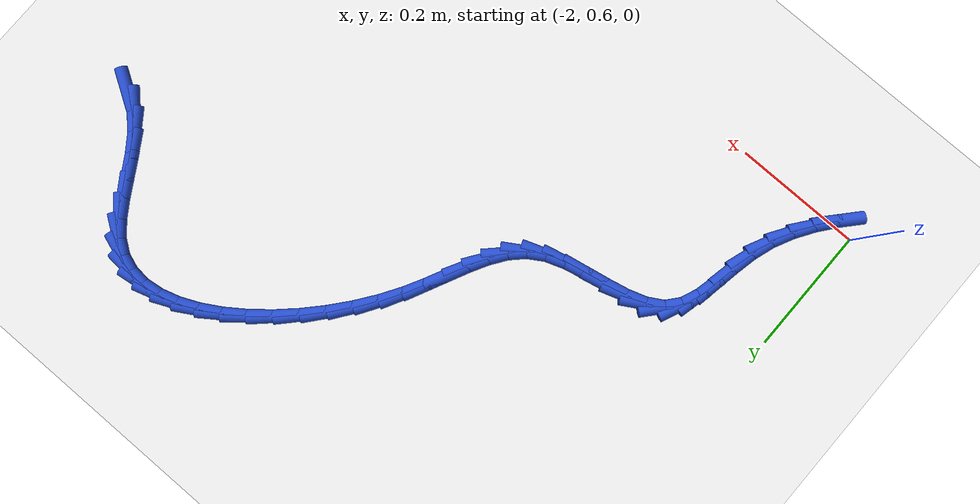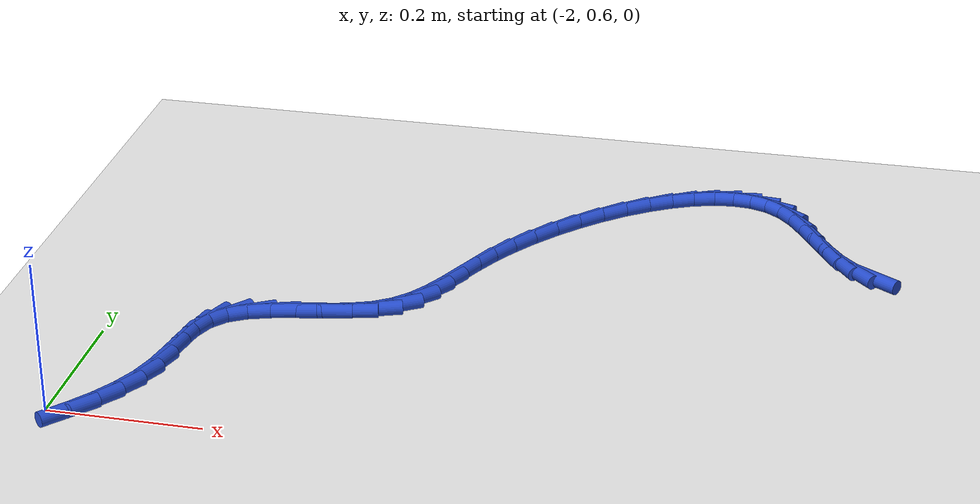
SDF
<sdf version="1.6">
 <world name="default">
  <model name="ground_plane">
   <static>1</static>
   <link name="link">
    <collision name="collision">
     <geometry><plane><normal>0 0 1</normal><size>100 100</size></plane></geometry>
     <surface><friction><ode><mu>100</mu><mu2>50</mu2></ode></friction></surface>
    </collision>
    <visual name="visual">
     <cast_shadows>0</cast_shadows>
     <geometry><plane><normal>0 0 1</normal><size>100 100</size></plane></geometry>
     <material>
      <script><uri>file://media/materials/scripts/gazebo.material</uri><name>Gazebo/WhiteGlow</name></script>
     </material>
    </visual>
   </link>
  </model>
  <model name="line">
   <link name="link_65">
    <pose>-1.0385259442946118 1.1344171002235808 0.01 0 1.57 -0.5570299091420484</pose>
    <collision name="collision">
     <geometry><cylinder><radius>0.01</radius><length>0.08</length></cylinder></geometry>
    </collision>
    <visual name="visual">
     <material>
      <script><name>Gazebo/Blue</name><uri>file://media/materials/scripts/gazebo.material</uri></script>
     </material>
     <geometry><cylinder><radius>0.01</radius><length>0.08</length></cylinder></geometry>
    </visual>
   </link>
   <link name="link_66">
    <pose>-1.0639125861375751 1.1502284004064944 0.01 0 1.57 -0.7981371832090325</pose>
    <collision name="collision">
     <geometry><cylinder><radius>0.01</radius><length>0.08</length></cylinder></geometry>
    </collision>
    <visual name="visual">
     <material>
      <script><name>Gazebo/Blue</name><uri>file://media/materials/scripts/gazebo.material</uri></script>
     </material>
     <geometry><cylinder><radius>0.01</radius><length>0.08</length></cylinder></geometry>
    </visual>
   </link>
   <link name="link_67">
    <pose>-1.085646373729949 1.1725230980873538 0.01 0 1.57 -0.947294685701872</pose>
    <collision name="collision">
     <geometry><cylinder><radius>0.01</radius><length>0.08</length></cylinder></geometry>
    </collision>
    <visual name="visual">
     <material>
      <script><name>Gazebo/Blue</name><uri>file://media/materials/scripts/gazebo.material</uri></script>
     </material>
     <geometry><cylinder><radius>0.01</radius><length>0.08</length></cylinder></geometry>
    </visual>
   </link>
   <link name="link_68">
    <pose>-1.1047691575569256 1.1991117459700105 0.01 0 1.57 -1.0217661538840968</pose>
    <collision name="collision">
     <geometry><cylinder><radius>0.01</radius><length>0.08</length></cylinder></geometry>
    </collision>
    <visual name="visual">
     <material>
      <script><name>Gazebo/Blue</name><uri>file://media/materials/scripts/gazebo.material</uri></script>
     </material>
     <geometry><cylinder><radius>0.01</radius><length>0.08</length></cylinder></geometry>
    </visual>
   </link>
   <link name="link_69">
    <pose>-1.1223228001824475 1.2278048758486622 0.01 0 1.57 -1.0339447680257958</pose>
    <collision name="collision">
     <geometry><cylinder><radius>0.01</radius><length>0.08</length></cylinder></geometry>
    </collision>
    <visual name="visual">
     <material>
      <script><name>Gazebo/Blue</name><uri>file://media/materials/scripts/gazebo.material</uri></script>
     </material>
     <geometry><cylinder><radius>0.01</radius><length>0.08</length></cylinder></geometry>
    </visual>
   </link>
   <link name="link_70">
    <pose>-1.139349164170456 1.256413019517506 0.01 0 1.57 -0.9831840949513274</pose>
    <collision name="collision">
     <geometry><cylinder><radius>0.01</radius><length>0.08</length></cylinder></geometry>
    </collision>
    <visual name="visual">
     <material>
      <script><name>Gazebo/Blue</name><uri>file://media/materials/scripts/gazebo.material</uri></script>
     </material>
     <geometry><cylinder><radius>0.01</radius><length>0.08</length></cylinder></geometry>
    </visual>
   </link>
   <link name="link_71">
    <pose>-1.1568901120848927 1.2827467087707387 0.01 0 1.57 -0.8529681778314206</pose>
    <collision name="collision">
     <geometry><cylinder><radius>0.01</radius><length>0.08</length></cylinder></geometry>
    </collision>
    <visual name="visual">
     <material>
      <script><name>Gazebo/Blue</name><uri>file://media/materials/scripts/gazebo.material</uri></script>
     </material>
     <geometry><cylinder><radius>0.01</radius><length>0.08</length></cylinder></geometry>
    </visual>
   </link>
   <link name="link_72">
    <pose>-1.1759875064897007 1.3046164754025587 0.01 0 1.57 -0.6192459355643442</pose>
    <collision name="collision">
     <geometry><cylinder><radius>0.01</radius><length>0.08</length></cylinder></geometry>
    </collision>
    <visual name="visual">
     <material>
      <script><name>Gazebo/Blue</name><uri>file://media/materials/scripts/gazebo.material</uri></script>
     </material>
     <geometry><cylinder><radius>0.01</radius><length>0.08</length></cylinder></geometry>
    </visual>
   </link>
   <link name="link_73">
    <pose>-1.1975858368351269 1.3200111439633708 0.01 0 1.57 -0.3404955863911096</pose>
    <collision name="collision">
     <geometry><cylinder><radius>0.01</radius><length>0.08</length></cylinder></geometry>
    </collision>
    <visual name="visual">
     <material>
      <script><name>Gazebo/Blue</name><uri>file://media/materials/scripts/gazebo.material</uri></script>
     </material>
     <geometry><cylinder><radius>0.01</radius><length>0.08</length></cylinder></geometry>
    </visual>
   </link>
   <link name="link_74">
    <pose>-1.221730652946045 1.3285655213224539 0.01 0 1.57 -0.08504919665741796</pose>
    <collision name="collision">
     <geometry><cylinder><radius>0.01</radius><length>0.08</length></cylinder></geometry>
    </collision>
    <visual name="visual">
     <material>
      <script><name>Gazebo/Blue</name><uri>file://media/materials/scripts/gazebo.material</uri></script>
     </material>
     <geometry><cylinder><radius>0.01</radius><length>0.08</length></cylinder></geometry>
    </visual>
   </link>
   <link name="link_75">
    <pose>-1.247981900912136 1.3308035676798982 0.01 0 1.57 0.12634848457698927</pose>
    <collision name="collision">
     <geometry><cylinder><radius>0.01</radius><length>0.08</length></cylinder></geometry>
    </collision>
    <visual name="visual">
     <material>
      <script><name>Gazebo/Blue</name><uri>file://media/materials/scripts/gazebo.material</uri></script>
     </material>
     <geometry><cylinder><radius>0.01</radius><length>0.08</length></cylinder></geometry>
    </visual>
   </link>
   <link name="link_76">
    <pose>-1.2758947827266114 1.3272579298023763 0.01 0 1.57 0.29327493461313775</pose>
    <collision name="collision">
     <geometry><cylinder><radius>0.01</radius><length>0.08</length></cylinder></geometry>
    </collision>
    <visual name="visual">
     <material>
      <script><name>Gazebo/Blue</name><uri>file://media/materials/scripts/gazebo.material</uri></script>
     </material>
     <geometry><cylinder><radius>0.01</radius><length>0.08</length></cylinder></geometry>
    </visual>
   </link>
   <link name="link_77">
    <pose>-1.305024500382684 1.3184612544565595 0.01 0 1.57 0.4245012357309593</pose>
    <collision name="collision">
     <geometry><cylinder><radius>0.01</radius><length>0.08</length></cylinder></geometry>
    </collision>
    <visual name="visual">
     <material>
      <script><name>Gazebo/Blue</name><uri>file://media/materials/scripts/gazebo.material</uri></script>
     </material>
     <geometry><cylinder><radius>0.01</radius><length>0.08</length></cylinder></geometry>
    </visual>
   </link>
   <link name="link_78">
    <pose>-1.3349262558735653 1.3049461884091194 0.01 0 1.57 0.5297322021029683</pose>
    <collision name="collision">
     <geometry><cylinder><radius>0.01</radius><length>0.08</length></cylinder></geometry>
    </collision>
    <visual name="visual">
     <material>
      <script><name>Gazebo/Blue</name><uri>file://media/materials/scripts/gazebo.material</uri></script>
     </material>
     <geometry><cylinder><radius>0.01</radius><length>0.08</length></cylinder></geometry>
    </visual>
   </link>
   <link name="link_79">
    <pose>-1.3651552511924674 1.2872453784267284 0.01 0 1.57 0.6168489731235464</pose>
    <collision name="collision">
     <geometry><cylinder><radius>0.01</radius><length>0.08</length></cylinder></geometry>
    </collision>
    <visual name="visual">
     <material>
      <script><name>Gazebo/Blue</name><uri>file://media/materials/scripts/gazebo.material</uri></script>
     </material>
     <geometry><cylinder><radius>0.01</radius><length>0.08</length></cylinder></geometry>
    </visual>
   </link>
   <link name="link_80">
    <pose>-1.395266688332602 1.2658914712760576 0.01 0 1.57 0.6917374154410754</pose>
    <collision name="collision">
     <geometry><cylinder><radius>0.01</radius><length>0.08</length></cylinder></geometry>
    </collision>
    <visual name="visual">
     <material>
      <script><name>Gazebo/Blue</name><uri>file://media/materials/scripts/gazebo.material</uri></script>
     </material>
     <geometry><cylinder><radius>0.01</radius><length>0.08</length></cylinder></geometry>
    </visual>
   </link>
   <link name="link_81">
    <pose>-1.4248157692871815 1.241417113723779 0.01 0 1.57 0.7587919112067915</pose>
    <collision name="collision">
     <geometry><cylinder><radius>0.01</radius><length>0.08</length></cylinder></geometry>
    </collision>
    <visual name="visual">
     <material>
      <script><name>Gazebo/Blue</name><uri>file://media/materials/scripts/gazebo.material</uri></script>
     </material>
     <geometry><cylinder><radius>0.01</radius><length>0.08</length></cylinder></geometry>
    </visual>
   </link>
   <link name="link_82">
    <pose>-1.4533576960494177 1.2143549525365644 0.01 0 1.57 0.8214515811731434</pose>
    <collision name="collision">
     <geometry><cylinder><radius>0.01</radius><length>0.08</length></cylinder></geometry>
    </collision>
    <visual name="visual">
     <material>
      <script><name>Gazebo/Blue</name><uri>file://media/materials/scripts/gazebo.material</uri></script>
     </material>
     <geometry><cylinder><radius>0.01</radius><length>0.08</length></cylinder></geometry>
    </visual>
   </link>
   <link name="link_83">
    <pose>-1.4804476706125231 1.1852376344810853 0.01 0 1.57 0.8826420778739458</pose>
    <collision name="collision">
     <geometry><cylinder><radius>0.01</radius><length>0.08</length></cylinder></geometry>
    </collision>
    <visual name="visual">
     <material>
      <script><name>Gazebo/Blue</name><uri>file://media/materials/scripts/gazebo.material</uri></script>
     </material>
     <geometry><cylinder><radius>0.01</radius><length>0.08</length></cylinder></geometry>
    </visual>
   </link>
   <link name="link_84">
    <pose>-1.505640894969709 1.1545978063240137 0.01 0 1.57 0.9451448736222566</pose>
    <collision name="collision">
     <geometry><cylinder><radius>0.01</radius><length>0.08</length></cylinder></geometry>
    </collision>
    <visual name="visual">
     <material>
      <script><name>Gazebo/Blue</name><uri>file://media/materials/scripts/gazebo.material</uri></script>
     </material>
     <geometry><cylinder><radius>0.01</radius><length>0.08</length></cylinder></geometry>
    </visual>
   </link>
   <link name="link_85">
    <pose>-1.5284925711141875 1.1229681148320214 0.01 0 1.57 1.0119502504168083</pose>
    <collision name="collision">
     <geometry><cylinder><radius>0.01</radius><length>0.08</length></cylinder></geometry>
    </collision>
    <visual name="visual">
     <material>
      <script><name>Gazebo/Blue</name><uri>file://media/materials/scripts/gazebo.material</uri></script>
     </material>
     <geometry><cylinder><radius>0.01</radius><length>0.08</length></cylinder></geometry>
    </visual>
   </link>
   <link name="link_86">
    <pose>-1.5485579010391712 1.0908812067717797 0.01 0 1.57 1.0805561548901128</pose>
    <collision name="collision">
     <geometry><cylinder><radius>0.01</radius><length>0.08</length></cylinder></geometry>
    </collision>
    <visual name="visual">
     <material>
      <script><name>Gazebo/Blue</name><uri>file://media/materials/scripts/gazebo.material</uri></script>
     </material>
     <geometry><cylinder><radius>0.01</radius><length>0.08</length></cylinder></geometry>
    </visual>
   </link>
   <link name="link_87">
    <pose>-1.5656249235765292 1.0589023263864956 0.01 0 1.57 1.1213152404434834</pose>
    <collision name="collision">
     <geometry><cylinder><radius>0.01</radius><length>0.08</length></cylinder></geometry>
    </collision>
    <visual name="visual">
     <material>
      <script><name>Gazebo/Blue</name><uri>file://media/materials/scripts/gazebo.material</uri></script>
     </material>
     <geometry><cylinder><radius>0.01</radius><length>0.08</length></cylinder></geometry>
    </visual>
   </link>
   <link name="link_88">
    <pose>-1.5806484250973594 1.0277600641739928 0.01 0 1.57 1.119786827306552</pose>
    <collision name="collision">
     <geometry><cylinder><radius>0.01</radius><length>0.08</length></cylinder></geometry>
    </collision>
    <visual name="visual">
     <material>
      <script><name>Gazebo/Blue</name><uri>file://media/materials/scripts/gazebo.material</uri></script>
     </material>
     <geometry><cylinder><radius>0.01</radius><length>0.08</length></cylinder></geometry>
    </visual>
   </link>
   <link name="link_89">
    <pose>-1.5949478864759667 0.9982340683623879 0.01 0 1.57 1.0687036214663233</pose>
    <collision name="collision">
     <geometry><cylinder><radius>0.01</radius><length>0.08</length></cylinder></geometry>
    </collision>
    <visual name="visual">
     <material>
      <script><name>Gazebo/Blue</name><uri>file://media/materials/scripts/gazebo.material</uri></script>
     </material>
     <geometry><cylinder><radius>0.01</radius><length>0.08</length></cylinder></geometry>
    </visual>
   </link>
   <link name="link_90">
    <pose>-1.6098429120126165 0.9711040044596028 0.01 0 1.57 0.958892715475269</pose>
    <collision name="collision">
     <geometry><cylinder><radius>0.01</radius><length>0.08</length></cylinder></geometry>
    </collision>
    <visual name="visual">
     <material>
      <script><name>Gazebo/Blue</name><uri>file://media/materials/scripts/gazebo.material</uri></script>
     </material>
     <geometry><cylinder><radius>0.01</radius><length>0.08</length></cylinder></geometry>
    </visual>
   </link>
   <link name="link_91">
    <pose>-1.626653106007573 0.9471495379735574 0.01 0 1.57 0.7842553460569397</pose>
    <collision name="collision">
     <geometry><cylinder><radius>0.01</radius><length>0.08</length></cylinder></geometry>
    </collision>
    <visual name="visual">
     <material>
      <script><name>Gazebo/Blue</name><uri>file://media/materials/scripts/gazebo.material</uri></script>
     </material>
     <geometry><cylinder><radius>0.01</radius><length>0.08</length></cylinder></geometry>
    </visual>
   </link>
   <link name="link_92">
    <pose>-1.6466980727611018 0.9271503344121735 0.01 0 1.57 0.5556552871291675</pose>
    <collision name="collision">
     <geometry><cylinder><radius>0.01</radius><length>0.08</length></cylinder></geometry>
    </collision>
    <visual name="visual">
     <material>
      <script><name>Gazebo/Blue</name><uri>file://media/materials/scripts/gazebo.material</uri></script>
     </material>
     <geometry><cylinder><radius>0.01</radius><length>0.08</length></cylinder></geometry>
    </visual>
   </link>
   <link name="link_93">
    <pose>-1.671290466021364 0.9118805862204147 0.01 0 1.57 0.3447441512322489</pose>
    <collision name="collision">
     <geometry><cylinder><radius>0.01</radius><length>0.08</length></cylinder></geometry>
    </collision>
    <visual name="visual">
     <material>
      <script><name>Gazebo/Blue</name><uri>file://media/materials/scripts/gazebo.material</uri></script>
     </material>
     <geometry><cylinder><radius>0.01</radius><length>0.08</length></cylinder></geometry>
    </visual>
   </link>
   <link name="link_94">
    <pose>-1.7007234250598435 0.9013116910675053 0.01 0 1.57 0.22802039467113297</pose>
    <collision name="collision">
     <geometry><cylinder><radius>0.01</radius><length>0.08</length></cylinder></geometry>
    </collision>
    <visual name="visual">
     <material>
      <script><name>Gazebo/Blue</name><uri>file://media/materials/scripts/gazebo.material</uri></script>
     </material>
     <geometry><cylinder><radius>0.01</radius><length>0.08</length></cylinder></geometry>
    </visual>
   </link>
   <link name="link_95">
    <pose>-1.733205934260884 0.8937739236239329 0.01 0 1.57 0.1881790866532827</pose>
    <collision name="collision">
     <geometry><cylinder><radius>0.01</radius><length>0.08</length></cylinder></geometry>
    </collision>
    <visual name="visual">
     <material>
      <script><name>Gazebo/Blue</name><uri>file://media/materials/scripts/gazebo.material</uri></script>
     </material>
     <geometry><cylinder><radius>0.01</radius><length>0.08</length></cylinder></geometry>
    </visual>
   </link>
   <link name="link_96">
    <pose>-1.7666923228893128 0.8873970358562495 0.01 0 1.57 0.21503413357905765</pose>
    <collision name="collision">
     <geometry><cylinder><radius>0.01</radius><length>0.08</length></cylinder></geometry>
    </collision>
    <visual name="visual">
     <material>
      <script><name>Gazebo/Blue</name><uri>file://media/materials/scripts/gazebo.material</uri></script>
     </material>
     <geometry><cylinder><radius>0.01</radius><length>0.08</length></cylinder></geometry>
    </visual>
   </link>
   <link name="link_97">
    <pose>-1.799136920209954 0.8803107797310057 0.01 0 1.57 0.3180721615306012</pose>
    <collision name="collision">
     <geometry><cylinder><radius>0.01</radius><length>0.08</length></cylinder></geometry>
    </collision>
    <visual name="visual">
     <material>
      <script><name>Gazebo/Blue</name><uri>file://media/materials/scripts/gazebo.material</uri></script>
     </material>
     <geometry><cylinder><radius>0.01</radius><length>0.08</length></cylinder></geometry>
    </visual>
   </link>
   <link name="link_98">
    <pose>-1.8284940554876334 0.8706449072147531 0.01 0 1.57 0.5276144355151536</pose>
    <collision name="collision">
     <geometry><cylinder><radius>0.01</radius><length>0.08</length></cylinder></geometry>
    </collision>
    <visual name="visual">
     <material>
      <script><name>Gazebo/Blue</name><uri>file://media/materials/scripts/gazebo.material</uri></script>
     </material>
     <geometry><cylinder><radius>0.01</radius><length>0.08</length></cylinder></geometry>
    </visual>
   </link>
   <link name="link_99">
    <pose>-1.852718057987177 0.8565291702740424 0.01 0 1.57 0.8667261733181183</pose>
    <collision name="collision">
     <geometry><cylinder><radius>0.01</radius><length>0.08</length></cylinder></geometry>
    </collision>
    <visual name="visual">
     <material>
      <script><name>Gazebo/Blue</name><uri>file://media/materials/scripts/gazebo.material</uri></script>
     </material>
     <geometry><cylinder><radius>0.01</radius><length>0.08</length></cylinder></geometry>
    </visual>
   </link>
   <link name="link_100">
    <pose>-1.8699491652582965 0.8362398562567086 0.01 0 1.57 1.1763074709695271</pose>
    <collision name="collision">
     <geometry><cylinder><radius>0.01</radius><length>0.08</length></cylinder></geometry>
    </collision>
    <visual name="visual">
     <material>
      <script><name>Gazebo/Blue</name><uri>file://media/materials/scripts/gazebo.material</uri></script>
     </material>
     <geometry><cylinder><radius>0.01</radius><length>0.08</length></cylinder></geometry>
    </visual>
   </link>
   <link name="link_101">
    <pose>-1.8808544300415326 0.8100449218309925 0.01 0 1.57 1.3422962470546207</pose>
    <collision name="collision">
     <geometry><cylinder><radius>0.01</radius><length>0.08</length></cylinder></geometry>
    </collision>
    <visual name="visual">
     <material>
      <script><name>Gazebo/Blue</name><uri>file://media/materials/scripts/gazebo.material</uri></script>
     </material>
     <geometry><cylinder><radius>0.01</radius><length>0.08</length></cylinder></geometry>
    </visual>
   </link>
   <link name="link_102">
    <pose>-1.8879233973702727 0.7796488363153337 0.01 0 1.57 1.3972006914347121</pose>
    <collision name="collision">
     <geometry><cylinder><radius>0.01</radius><length>0.08</length></cylinder></geometry>
    </collision>
    <visual name="visual">
     <material>
      <script><name>Gazebo/Blue</name><uri>file://media/materials/scripts/gazebo.material</uri></script>
     </material>
     <geometry><cylinder><radius>0.01</radius><length>0.08</length></cylinder></geometry>
    </visual>
   </link>
   <link name="link_103">
    <pose>-1.8936859243550501 0.7467878435432193 0.01 0 1.57 1.3657405372076399</pose>
    <collision name="collision">
     <geometry><cylinder><radius>0.01</radius><length>0.08</length></cylinder></geometry>
    </collision>
    <visual name="visual">
     <material>
      <script><name>Gazebo/Blue</name><uri>file://media/materials/scripts/gazebo.material</uri></script>
     </material>
     <geometry><cylinder><radius>0.01</radius><length>0.08</length></cylinder></geometry>
    </visual>
   </link>
   <link name="link_104">
    <pose>-1.900671868106401 0.7131981873481348 0.01 0 1.57 1.2553567607452465</pose>
    <collision name="collision">
     <geometry><cylinder><radius>0.01</radius><length>0.08</length></cylinder></geometry>
    </collision>
    <visual name="visual">
     <material>
      <script><name>Gazebo/Blue</name><uri>file://media/materials/scripts/gazebo.material</uri></script>
     </material>
     <geometry><cylinder><radius>0.01</radius><length>0.08</length></cylinder></geometry>
    </visual>
   </link>
   <link name="link_105">
    <pose>-1.9113214386126691 0.6805644031228931 0.01 0 1.57 1.1174460737055791</pose>
    <collision name="collision">
     <geometry><cylinder><radius>0.01</radius><length>0.08</length></cylinder></geometry>
    </collision>
    <visual name="visual">
     <material>
      <script><name>Gazebo/Blue</name><uri>file://media/materials/scripts/gazebo.material</uri></script>
     </material>
     <geometry><cylinder><radius>0.01</radius><length>0.08</length></cylinder></geometry>
    </visual>
   </link>
   <link name="link_106">
    <pose>-1.926403652890906 0.6496070825162474 0.01 0 1.57 1.0019660237413317</pose>
    <collision name="collision">
     <geometry><cylinder><radius>0.01</radius><length>0.08</length></cylinder></geometry>
    </collision>
    <visual name="visual">
     <material>
      <script><name>Gazebo/Blue</name><uri>file://media/materials/scripts/gazebo.material</uri></script>
     </material>
     <geometry><cylinder><radius>0.01</radius><length>0.08</length></cylinder></geometry>
    </visual>
   </link>
   <link name="link_107">
    <pose>-1.9452082762602112 0.6201935851178019 0.01 0 1.57 0.9105711030601576</pose>
    <collision name="collision">
     <geometry><cylinder><radius>0.01</radius><length>0.08</length></cylinder></geometry>
    </collision>
    <visual name="visual">
     <material>
      <script><name>Gazebo/Blue</name><uri>file://media/materials/scripts/gazebo.material</uri></script>
     </material>
     <geometry><cylinder><radius>0.01</radius><length>0.08</length></cylinder></geometry>
    </visual>
   </link>
   <link name="link_108">
    <pose>-1.9669739943777766 0.5921618077792311 0.01 0 1.57 0.8414008493098585</pose>
    <collision name="collision">
     <geometry><cylinder><radius>0.01</radius><length>0.08</length></cylinder></geometry>
    </collision>
    <visual name="visual">
     <material>
      <script><name>Gazebo/Blue</name><uri>file://media/materials/scripts/gazebo.material</uri></script>
     </material>
     <geometry><cylinder><radius>0.01</radius><length>0.08</length></cylinder></geometry>
    </visual>
   </link>
  </model>
 </world>
</sdf>
